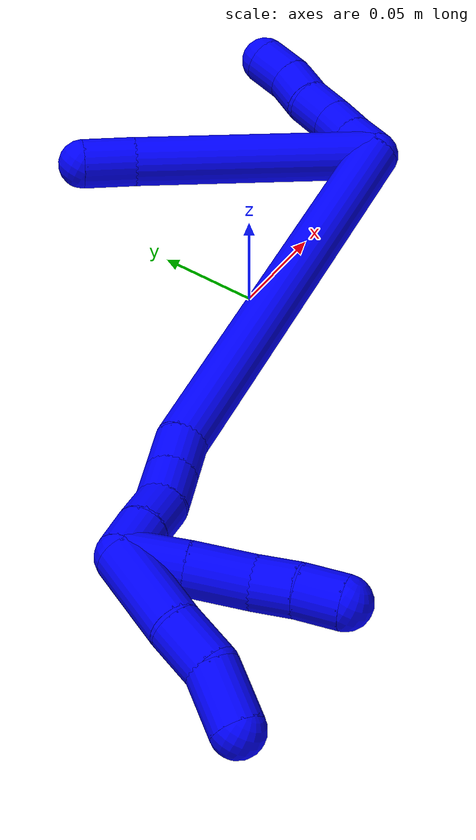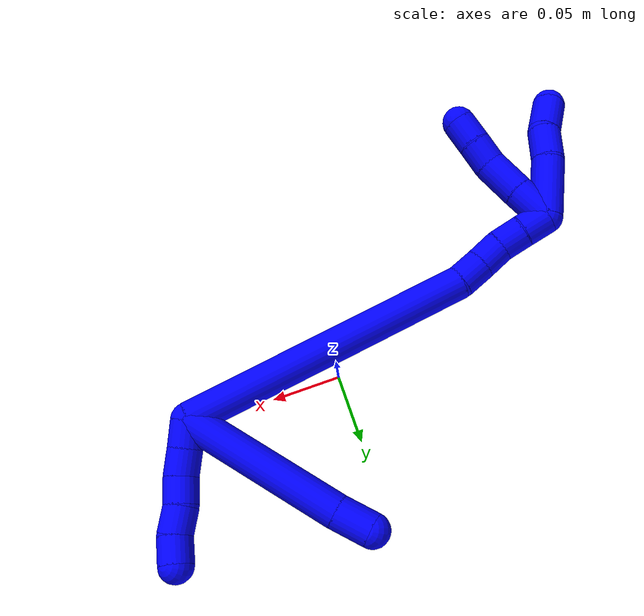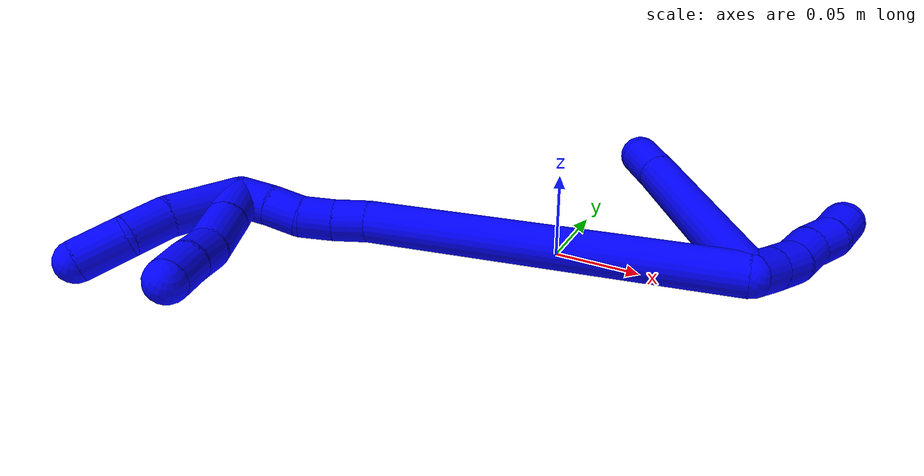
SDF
<sdf version="1.7">
 <world name="default">
  <model name="1">
   <static>0</static>
   <link name="1">
    <collision name="collision-cylinder-e_1_2_8">
     <pose>-0.029239 0.046481 -0.027835 -2.11037 -0.494883 0.838602</pose>
     <geometry><cylinder><radius>0.0125</radius><length>0.123129</length></cylinder></geometry>
     <surface>
      <friction><ode><mu>1.16</mu><mu2>1.16</mu2><slip1>0</slip1><slip2>0</slip2></ode></friction>
      <contact><ode><kp>1e+06</kp><kd>1</kd><max_vel>0</max_vel><min_depth>0.001</min_depth></ode></contact>
     </surface>
    </collision>
    <visual name="visual-cylinder-e_1_2_8">
     <pose>-0.029239 0.046481 -0.027835 -2.11037 -0.494883 0.838602</pose>
     <geometry><cylinder><radius>0.0125</radius><length>0.123129</length></cylinder></geometry>
     <material><ambient>0 0 1 1</ambient></material>
    </visual>
    <collision name="collision-cylinder-e_2_8_6">
     <pose>-0.065745 0.102594 -0.061579 -2.12104 -0.571562 0.966813</pose>
     <geometry><cylinder><radius>0.0125</radius><length>0.026871</length></cylinder></geometry>
     <surface>
      <friction><ode><mu>1.16</mu><mu2>1.16</mu2><slip1>0</slip1><slip2>0</slip2></ode></friction>
      <contact><ode><kp>1e+06</kp><kd>1</kd><max_vel>0</max_vel><min_depth>0.001</min_depth></ode></contact>
     </surface>
    </collision>
    <visual name="visual-cylinder-e_2_8_6">
     <pose>-0.065745 0.102594 -0.061579 -2.12104 -0.571562 0.966813</pose>
     <geometry><cylinder><radius>0.0125</radius><length>0.026871</length></cylinder></geometry>
     <material><ambient>0 0 1 1</ambient></material>
    </visual>
    <collision name="collision-cylinder-e_1_2_9">
     <pose>0.005369 0.008375 -0.001014 -1.69131 0.566782 -0.635014</pose>
     <geometry><cylinder><radius>0.0125</radius><length>0.02</length></cylinder></geometry>
     <surface>
      <friction><ode><mu>1.16</mu><mu2>1.16</mu2><slip1>0</slip1><slip2>0</slip2></ode></friction>
      <contact><ode><kp>1e+06</kp><kd>1</kd><max_vel>0</max_vel><min_depth>0.001</min_depth></ode></contact>
     </surface>
    </collision>
    <visual name="visual-cylinder-e_1_2_9">
     <pose>0.005369 0.008375 -0.001014 -1.69131 0.566782 -0.635014</pose>
     <geometry><cylinder><radius>0.0125</radius><length>0.02</length></cylinder></geometry>
     <material><ambient>0 0 1 1</ambient></material>
    </visual>
    <collision name="collision-cylinder-e_2_9_10">
     <pose>0.015938 0.025281 -0.002456 -1.62093 0.546826 -0.573468</pose>
     <geometry><cylinder><radius>0.0125</radius><length>0.02</length></cylinder></geometry>
     <surface>
      <friction><ode><mu>1.16</mu><mu2>1.16</mu2><slip1>0</slip1><slip2>0</slip2></ode></friction>
      <contact><ode><kp>1e+06</kp><kd>1</kd><max_vel>0</max_vel><min_depth>0.001</min_depth></ode></contact>
     </surface>
    </collision>
    <visual name="visual-cylinder-e_2_9_10">
     <pose>0.015938 0.025281 -0.002456 -1.62093 0.546826 -0.573468</pose>
     <geometry><cylinder><radius>0.0125</radius><length>0.02</length></cylinder></geometry>
     <material><ambient>0 0 1 1</ambient></material>
    </visual>
    <collision name="collision-cylinder-e_3_10_11">
     <pose>0.024085 0.043368 -0.002932 -1.57577 0.299151 -0.300622</pose>
     <geometry><cylinder><radius>0.0125</radius><length>0.02</length></cylinder></geometry>
     <surface>
      <friction><ode><mu>1.16</mu><mu2>1.16</mu2><slip1>0</slip1><slip2>0</slip2></ode></friction>
      <contact><ode><kp>1e+06</kp><kd>1</kd><max_vel>0</max_vel><min_depth>0.001</min_depth></ode></contact>
     </surface>
    </collision>
    <visual name="visual-cylinder-e_3_10_11">
     <pose>0.024085 0.043368 -0.002932 -1.57577 0.299151 -0.300622</pose>
     <geometry><cylinder><radius>0.0125</radius><length>0.02</length></cylinder></geometry>
     <material><ambient>0 0 1 1</ambient></material>
    </visual>
    <collision name="collision-cylinder-e_4_11_12">
     <pose>0.031871 0.061628 -0.002074 -1.46713 0.505108 -0.45709</pose>
     <geometry><cylinder><radius>0.0125</radius><length>0.02</length></cylinder></geometry>
     <surface>
      <friction><ode><mu>1.16</mu><mu2>1.16</mu2><slip1>0</slip1><slip2>0</slip2></ode></friction>
      <contact><ode><kp>1e+06</kp><kd>1</kd><max_vel>0</max_vel><min_depth>0.001</min_depth></ode></contact>
     </surface>
    </collision>
    <visual name="visual-cylinder-e_4_11_12">
     <pose>0.031871 0.061628 -0.002074 -1.46713 0.505108 -0.45709</pose>
     <geometry><cylinder><radius>0.0125</radius><length>0.02</length></cylinder></geometry>
     <material><ambient>0 0 1 1</ambient></material>
    </visual>
    <collision name="collision-cylinder-e_5_12_5">
     <pose>0.039195 0.080018 -0.001283 -1.58261 0.251151 -0.254105</pose>
     <geometry><cylinder><radius>0.0125</radius><length>0.02</length></cylinder></geometry>
     <surface>
      <friction><ode><mu>1.16</mu><mu2>1.16</mu2><slip1>0</slip1><slip2>0</slip2></ode></friction>
      <contact><ode><kp>1e+06</kp><kd>1</kd><max_vel>0</max_vel><min_depth>0.001</min_depth></ode></contact>
     </surface>
    </collision>
    <visual name="visual-cylinder-e_5_12_5">
     <pose>0.039195 0.080018 -0.001283 -1.58261 0.251151 -0.254105</pose>
     <geometry><cylinder><radius>0.0125</radius><length>0.02</length></cylinder></geometry>
     <material><ambient>0 0 1 1</ambient></material>
    </visual>
    <collision name="collision-cylinder-e_1_2_13">
     <pose>-0.092253 -0.017741 -0.055584 2.83265 -1.00684 -2.59052</pose>
     <geometry><cylinder><radius>0.0125</radius><length>0.218311</length></cylinder></geometry>
     <surface>
      <friction><ode><mu>1.16</mu><mu2>1.16</mu2><slip1>0</slip1><slip2>0</slip2></ode></friction>
      <contact><ode><kp>1e+06</kp><kd>1</kd><max_vel>0</max_vel><min_depth>0.001</min_depth></ode></contact>
     </surface>
    </collision>
    <visual name="visual-cylinder-e_1_2_13">
     <pose>-0.092253 -0.017741 -0.055584 2.83265 -1.00684 -2.59052</pose>
     <geometry><cylinder><radius>0.0125</radius><length>0.218311</length></cylinder></geometry>
     <material><ambient>0 0 1 1</ambient></material>
    </visual>
    <collision name="collision-cylinder-e_2_13_14">
     <pose>-0.193154 -0.039522 -0.115519 2.39305 -0.969203 -1.85963</pose>
     <geometry><cylinder><radius>0.0125</radius><length>0.020981</length></cylinder></geometry>
     <surface>
      <friction><ode><mu>1.16</mu><mu2>1.16</mu2><slip1>0</slip1><slip2>0</slip2></ode></friction>
      <contact><ode><kp>1e+06</kp><kd>1</kd><max_vel>0</max_vel><min_depth>0.001</min_depth></ode></contact>
     </surface>
    </collision>
    <visual name="visual-cylinder-e_2_13_14">
     <pose>-0.193154 -0.039522 -0.115519 2.39305 -0.969203 -1.85963</pose>
     <geometry><cylinder><radius>0.0125</radius><length>0.020981</length></cylinder></geometry>
     <material><ambient>0 0 1 1</ambient></material>
    </visual>
    <collision name="collision-cylinder-e_3_14_15">
     <pose>-0.21052 -0.047424 -0.123263 2.29188 -1.03798 -1.80189</pose>
     <geometry><cylinder><radius>0.0125</radius><length>0.020239</length></cylinder></geometry>
     <surface>
      <friction><ode><mu>1.16</mu><mu2>1.16</mu2><slip1>0</slip1><slip2>0</slip2></ode></friction>
      <contact><ode><kp>1e+06</kp><kd>1</kd><max_vel>0</max_vel><min_depth>0.001</min_depth></ode></contact>
     </surface>
    </collision>
    <visual name="visual-cylinder-e_3_14_15">
     <pose>-0.21052 -0.047424 -0.123263 2.29188 -1.03798 -1.80189</pose>
     <geometry><cylinder><radius>0.0125</radius><length>0.020239</length></cylinder></geometry>
     <material><ambient>0 0 1 1</ambient></material>
    </visual>
    <collision name="collision-cylinder-e_4_15_16">
     <pose>-0.228881 -0.052716 -0.129433 2.66563 -1.25753 -2.49767</pose>
     <geometry><cylinder><radius>0.0125</radius><length>0.020275</length></cylinder></geometry>
     <surface>
      <friction><ode><mu>1.16</mu><mu2>1.16</mu2><slip1>0</slip1><slip2>0</slip2></ode></friction>
      <contact><ode><kp>1e+06</kp><kd>1</kd><max_vel>0</max_vel><min_depth>0.001</min_depth></ode></contact>
     </surface>
    </collision>
    <visual name="visual-cylinder-e_4_15_16">
     <pose>-0.228881 -0.052716 -0.129433 2.66563 -1.25753 -2.49767</pose>
     <geometry><cylinder><radius>0.0125</radius><length>0.020275</length></cylinder></geometry>
     <material><ambient>0 0 1 1</ambient></material>
    </visual>
    <collision name="collision-cylinder-e_5_16_1">
     <pose>-0.247849 -0.055816 -0.135705 2.69619 -1.17714 -2.48742</pose>
     <geometry><cylinder><radius>0.0125</radius><length>0.020194</length></cylinder></geometry>
     <surface>
      <friction><ode><mu>1.16</mu><mu2>1.16</mu2><slip1>0</slip1><slip2>0</slip2></ode></friction>
      <contact><ode><kp>1e+06</kp><kd>1</kd><max_vel>0</max_vel><min_depth>0.001</min_depth></ode></contact>
     </surface>
    </collision>
    <visual name="visual-cylinder-e_5_16_1">
     <pose>-0.247849 -0.055816 -0.135705 2.69619 -1.17714 -2.48742</pose>
     <geometry><cylinder><radius>0.0125</radius><length>0.020194</length></cylinder></geometry>
     <material><ambient>0 0 1 1</ambient></material>
    </visual>
    <collision name="collision-cylinder-e_1_1_17">
     <pose>-0.267439 -0.077797 -0.139742 1.59745 -0.467791 -0.479953</pose>
     <geometry><cylinder><radius>0.0125</radius><length>0.045531</length></cylinder></geometry>
     <surface>
      <friction><ode><mu>1.16</mu><mu2>1.16</mu2><slip1>0</slip1><slip2>0</slip2></ode></friction>
      <contact><ode><kp>1e+06</kp><kd>1</kd><max_vel>0</max_vel><min_depth>0.001</min_depth></ode></contact>
     </surface>
    </collision>
    <visual name="visual-cylinder-e_1_1_17">
     <pose>-0.267439 -0.077797 -0.139742 1.59745 -0.467791 -0.479953</pose>
     <geometry><cylinder><radius>0.0125</radius><length>0.045531</length></cylinder></geometry>
     <material><ambient>0 0 1 1</ambient></material>
    </visual>
    <collision name="collision-cylinder-e_2_17_18">
     <pose>-0.281228 -0.110196 -0.141166 1.64372 -0.282944 -0.304049</pose>
     <geometry><cylinder><radius>0.0125</radius><length>0.02524</length></cylinder></geometry>
     <surface>
      <friction><ode><mu>1.16</mu><mu2>1.16</mu2><slip1>0</slip1><slip2>0</slip2></ode></friction>
      <contact><ode><kp>1e+06</kp><kd>1</kd><max_vel>0</max_vel><min_depth>0.001</min_depth></ode></contact>
     </surface>
    </collision>
    <visual name="visual-cylinder-e_2_17_18">
     <pose>-0.281228 -0.110196 -0.141166 1.64372 -0.282944 -0.304049</pose>
     <geometry><cylinder><radius>0.0125</radius><length>0.02524</length></cylinder></geometry>
     <material><ambient>0 0 1 1</ambient></material>
    </visual>
    <collision name="collision-cylinder-e_3_18_4">
     <pose>-0.290371 -0.134785 -0.147115 1.95575 -0.394737 -0.577009</pose>
     <geometry><cylinder><radius>0.0125</radius><length>0.029229</length></cylinder></geometry>
     <surface>
      <friction><ode><mu>1.16</mu><mu2>1.16</mu2><slip1>0</slip1><slip2>0</slip2></ode></friction>
      <contact><ode><kp>1e+06</kp><kd>1</kd><max_vel>0</max_vel><min_depth>0.001</min_depth></ode></contact>
     </surface>
    </collision>
    <visual name="visual-cylinder-e_3_18_4">
     <pose>-0.290371 -0.134785 -0.147115 1.95575 -0.394737 -0.577009</pose>
     <geometry><cylinder><radius>0.0125</radius><length>0.029229</length></cylinder></geometry>
     <material><ambient>0 0 1 1</ambient></material>
    </visual>
    <collision name="collision-cylinder-e_1_1_19">
     <pose>-0.253226 -0.070156 -0.134282 1.20057 0.282675 0.194194</pose>
     <geometry><cylinder><radius>0.0125</radius><length>0.028309</length></cylinder></geometry>
     <surface>
      <friction><ode><mu>1.16</mu><mu2>1.16</mu2><slip1>0</slip1><slip2>0</slip2></ode></friction>
      <contact><ode><kp>1e+06</kp><kd>1</kd><max_vel>0</max_vel><min_depth>0.001</min_depth></ode></contact>
     </surface>
    </collision>
    <visual name="visual-cylinder-e_1_1_19">
     <pose>-0.253226 -0.070156 -0.134282 1.20057 0.282675 0.194194</pose>
     <geometry><cylinder><radius>0.0125</radius><length>0.028309</length></cylinder></geometry>
     <material><ambient>0 0 1 1</ambient></material>
    </visual>
    <collision name="collision-cylinder-e_2_19_20">
     <pose>-0.245422 -0.096745 -0.124454 1.23165 0.255571 0.18134</pose>
     <geometry><cylinder><radius>0.0125</radius><length>0.030506</length></cylinder></geometry>
     <surface>
      <friction><ode><mu>1.16</mu><mu2>1.16</mu2><slip1>0</slip1><slip2>0</slip2></ode></friction>
      <contact><ode><kp>1e+06</kp><kd>1</kd><max_vel>0</max_vel><min_depth>0.001</min_depth></ode></contact>
     </surface>
    </collision>
    <visual name="visual-cylinder-e_2_19_20">
     <pose>-0.245422 -0.096745 -0.124454 1.23165 0.255571 0.18134</pose>
     <geometry><cylinder><radius>0.0125</radius><length>0.030506</length></cylinder></geometry>
     <material><ambient>0 0 1 1</ambient></material>
    </visual>
    <collision name="collision-cylinder-e_3_20_21">
     <pose>-0.241019 -0.119721 -0.115151 1.11926 0.054256 0.033993</pose>
     <geometry><cylinder><radius>0.0125</radius><length>0.020167</length></cylinder></geometry>
     <surface>
      <friction><ode><mu>1.16</mu><mu2>1.16</mu2><slip1>0</slip1><slip2>0</slip2></ode></friction>
      <contact><ode><kp>1e+06</kp><kd>1</kd><max_vel>0</max_vel><min_depth>0.001</min_depth></ode></contact>
     </surface>
    </collision>
    <visual name="visual-cylinder-e_3_20_21">
     <pose>-0.241019 -0.119721 -0.115151 1.11926 0.054256 0.033993</pose>
     <geometry><cylinder><radius>0.0125</radius><length>0.020167</length></cylinder></geometry>
     <material><ambient>0 0 1 1</ambient></material>
    </visual>
    <collision name="collision-cylinder-e_4_21_3">
     <pose>-0.239573 -0.13859 -0.107096 1.2135 0.085707 0.059507</pose>
     <geometry><cylinder><radius>0.0125</radius><length>0.021019</length></cylinder></geometry>
     <surface>
      <friction><ode><mu>1.16</mu><mu2>1.16</mu2><slip1>0</slip1><slip2>0</slip2></ode></friction>
      <contact><ode><kp>1e+06</kp><kd>1</kd><max_vel>0</max_vel><min_depth>0.001</min_depth></ode></contact>
     </surface>
    </collision>
    <visual name="visual-cylinder-e_4_21_3">
     <pose>-0.239573 -0.13859 -0.107096 1.2135 0.085707 0.059507</pose>
     <geometry><cylinder><radius>0.0125</radius><length>0.021019</length></cylinder></geometry>
     <material><ambient>0 0 1 1</ambient></material>
    </visual>
    <collision name="collision-sphere-3">
     <pose>-0.238673 -0.148399 -0.103434 0 -0 0</pose>
     <geometry><sphere><radius>0.0125</radius></sphere></geometry>
     <surface>
      <friction><ode><mu>1.16</mu><mu2>1.16</mu2><slip1>0</slip1><slip2>0</slip2></ode></friction>
      <contact><ode><kp>1e+06</kp><kd>1</kd><max_vel>0</max_vel><min_depth>0.001</min_depth></ode></contact>
     </surface>
    </collision>
    <visual name="visual-sphere-3">
     <pose>-0.238673 -0.148399 -0.103434 0 -0 0</pose>
     <geometry><sphere><radius>0.0125</radius></sphere></geometry>
     <material><ambient>0 0 1 1</ambient></material>
    </visual>
    <collision name="collision-sphere-21">
     <pose>-0.240472 -0.128781 -0.110758 0 -0 0</pose>
     <geometry><sphere><radius>0.0125</radius></sphere></geometry>
     <surface>
      <friction><ode><mu>1.16</mu><mu2>1.16</mu2><slip1>0</slip1><slip2>0</slip2></ode></friction>
      <contact><ode><kp>1e+06</kp><kd>1</kd><max_vel>0</max_vel><min_depth>0.001</min_depth></ode></contact>
     </surface>
    </collision>
    <visual name="visual-sphere-21">
     <pose>-0.240472 -0.128781 -0.110758 0 -0 0</pose>
     <geometry><sphere><radius>0.0125</radius></sphere></geometry>
     <material><ambient>0 0 1 1</ambient></material>
    </visual>
    <collision name="collision-sphere-20">
     <pose>-0.241566 -0.110662 -0.119545 0 -0 0</pose>
     <geometry><sphere><radius>0.0125</radius></sphere></geometry>
     <surface>
      <friction><ode><mu>1.16</mu><mu2>1.16</mu2><slip1>0</slip1><slip2>0</slip2></ode></friction>
      <contact><ode><kp>1e+06</kp><kd>1</kd><max_vel>0</max_vel><min_depth>0.001</min_depth></ode></contact>
     </surface>
    </collision>
    <visual name="visual-sphere-20">
     <pose>-0.241566 -0.110662 -0.119545 0 -0 0</pose>
     <geometry><sphere><radius>0.0125</radius></sphere></geometry>
     <material><ambient>0 0 1 1</ambient></material>
    </visual>
    <collision name="collision-sphere-19">
     <pose>-0.249278 -0.082828 -0.129364 0 -0 0</pose>
     <geometry><sphere><radius>0.0125</radius></sphere></geometry>
     <surface>
      <friction><ode><mu>1.16</mu><mu2>1.16</mu2><slip1>0</slip1><slip2>0</slip2></ode></friction>
      <contact><ode><kp>1e+06</kp><kd>1</kd><max_vel>0</max_vel><min_depth>0.001</min_depth></ode></contact>
     </surface>
    </collision>
    <visual name="visual-sphere-19">
     <pose>-0.249278 -0.082828 -0.129364 0 -0 0</pose>
     <geometry><sphere><radius>0.0125</radius></sphere></geometry>
     <material><ambient>0 0 1 1</ambient></material>
    </visual>
    <collision name="collision-sphere-11">
     <pose>0.027032 0.052924 -0.00298 0 -0 0</pose>
     <geometry><sphere><radius>0.0125</radius></sphere></geometry>
     <surface>
      <friction><ode><mu>1.16</mu><mu2>1.16</mu2><slip1>0</slip1><slip2>0</slip2></ode></friction>
      <contact><ode><kp>1e+06</kp><kd>1</kd><max_vel>0</max_vel><min_depth>0.001</min_depth></ode></contact>
     </surface>
    </collision>
    <visual name="visual-sphere-11">
     <pose>0.027032 0.052924 -0.00298 0 -0 0</pose>
     <geometry><sphere><radius>0.0125</radius></sphere></geometry>
     <material><ambient>0 0 1 1</ambient></material>
    </visual>
    <collision name="collision-sphere-10">
     <pose>0.021138 0.033812 -0.002885 0 -0 0</pose>
     <geometry><sphere><radius>0.0125</radius></sphere></geometry>
     <surface>
      <friction><ode><mu>1.16</mu><mu2>1.16</mu2><slip1>0</slip1><slip2>0</slip2></ode></friction>
      <contact><ode><kp>1e+06</kp><kd>1</kd><max_vel>0</max_vel><min_depth>0.001</min_depth></ode></contact>
     </surface>
    </collision>
    <visual name="visual-sphere-10">
     <pose>0.021138 0.033812 -0.002885 0 -0 0</pose>
     <geometry><sphere><radius>0.0125</radius></sphere></geometry>
     <material><ambient>0 0 1 1</ambient></material>
    </visual>
    <collision name="collision-sphere-6">
     <pose>-0.073013 0.112226 -0.067488 0 -0 0</pose>
     <geometry><sphere><radius>0.0125</radius></sphere></geometry>
     <surface>
      <friction><ode><mu>1.16</mu><mu2>1.16</mu2><slip1>0</slip1><slip2>0</slip2></ode></friction>
      <contact><ode><kp>1e+06</kp><kd>1</kd><max_vel>0</max_vel><min_depth>0.001</min_depth></ode></contact>
     </surface>
    </collision>
    <visual name="visual-sphere-6">
     <pose>-0.073013 0.112226 -0.067488 0 -0 0</pose>
     <geometry><sphere><radius>0.0125</radius></sphere></geometry>
     <material><ambient>0 0 1 1</ambient></material>
    </visual>
    <collision name="collision-sphere-9">
     <pose>0.010738 0.01675 -0.002028 0 -0 0</pose>
     <geometry><sphere><radius>0.0125</radius></sphere></geometry>
     <surface>
      <friction><ode><mu>1.16</mu><mu2>1.16</mu2><slip1>0</slip1><slip2>0</slip2></ode></friction>
      <contact><ode><kp>1e+06</kp><kd>1</kd><max_vel>0</max_vel><min_depth>0.001</min_depth></ode></contact>
     </surface>
    </collision>
    <visual name="visual-sphere-9">
     <pose>0.010738 0.01675 -0.002028 0 -0 0</pose>
     <geometry><sphere><radius>0.0125</radius></sphere></geometry>
     <material><ambient>0 0 1 1</ambient></material>
    </visual>
    <collision name="collision-sphere-2">
     <geometry><sphere><radius>0.0125</radius></sphere></geometry>
     <surface>
      <friction><ode><mu>1.16</mu><mu2>1.16</mu2><slip1>0</slip1><slip2>0</slip2></ode></friction>
      <contact><ode><kp>1e+06</kp><kd>1</kd><max_vel>0</max_vel><min_depth>0.001</min_depth></ode></contact>
     </surface>
    </collision>
    <visual name="visual-sphere-2">
     <geometry><sphere><radius>0.0125</radius></sphere></geometry>
     <material><ambient>0 0 1 1</ambient></material>
    </visual>
    <collision name="collision-sphere-8">
     <pose>-0.058477 0.092962 -0.05567 0 -0 0</pose>
     <geometry><sphere><radius>0.0125</radius></sphere></geometry>
     <surface>
      <friction><ode><mu>1.16</mu><mu2>1.16</mu2><slip1>0</slip1><slip2>0</slip2></ode></friction>
      <contact><ode><kp>1e+06</kp><kd>1</kd><max_vel>0</max_vel><min_depth>0.001</min_depth></ode></contact>
     </surface>
    </collision>
    <visual name="visual-sphere-8">
     <pose>-0.058477 0.092962 -0.05567 0 -0 0</pose>
     <geometry><sphere><radius>0.0125</radius></sphere></geometry>
     <material><ambient>0 0 1 1</ambient></material>
    </visual>
    <collision name="collision-sphere-12">
     <pose>0.03671 0.070332 -0.001169 0 -0 0</pose>
     <geometry><sphere><radius>0.0125</radius></sphere></geometry>
     <surface>
      <friction><ode><mu>1.16</mu><mu2>1.16</mu2><slip1>0</slip1><slip2>0</slip2></ode></friction>
      <contact><ode><kp>1e+06</kp><kd>1</kd><max_vel>0</max_vel><min_depth>0.001</min_depth></ode></contact>
     </surface>
    </collision>
    <visual name="visual-sphere-12">
     <pose>0.03671 0.070332 -0.001169 0 -0 0</pose>
     <geometry><sphere><radius>0.0125</radius></sphere></geometry>
     <material><ambient>0 0 1 1</ambient></material>
    </visual>
    <collision name="collision-sphere-5">
     <pose>0.041681 0.089704 -0.001397 0 -0 0</pose>
     <geometry><sphere><radius>0.0125</radius></sphere></geometry>
     <surface>
      <friction><ode><mu>1.16</mu><mu2>1.16</mu2><slip1>0</slip1><slip2>0</slip2></ode></friction>
      <contact><ode><kp>1e+06</kp><kd>1</kd><max_vel>0</max_vel><min_depth>0.001</min_depth></ode></contact>
     </surface>
    </collision>
    <visual name="visual-sphere-5">
     <pose>0.041681 0.089704 -0.001397 0 -0 0</pose>
     <geometry><sphere><radius>0.0125</radius></sphere></geometry>
     <material><ambient>0 0 1 1</ambient></material>
    </visual>
    <collision name="collision-sphere-13">
     <pose>-0.184506 -0.035481 -0.111169 0 -0 0</pose>
     <geometry><sphere><radius>0.0125</radius></sphere></geometry>
     <surface>
      <friction><ode><mu>1.16</mu><mu2>1.16</mu2><slip1>0</slip1><slip2>0</slip2></ode></friction>
      <contact><ode><kp>1e+06</kp><kd>1</kd><max_vel>0</max_vel><min_depth>0.001</min_depth></ode></contact>
     </surface>
    </collision>
    <visual name="visual-sphere-13">
     <pose>-0.184506 -0.035481 -0.111169 0 -0 0</pose>
     <geometry><sphere><radius>0.0125</radius></sphere></geometry>
     <material><ambient>0 0 1 1</ambient></material>
    </visual>
    <collision name="collision-sphere-14">
     <pose>-0.201803 -0.043563 -0.119869 0 -0 0</pose>
     <geometry><sphere><radius>0.0125</radius></sphere></geometry>
     <surface>
      <friction><ode><mu>1.16</mu><mu2>1.16</mu2><slip1>0</slip1><slip2>0</slip2></ode></friction>
      <contact><ode><kp>1e+06</kp><kd>1</kd><max_vel>0</max_vel><min_depth>0.001</min_depth></ode></contact>
     </surface>
    </collision>
    <visual name="visual-sphere-14">
     <pose>-0.201803 -0.043563 -0.119869 0 -0 0</pose>
     <geometry><sphere><radius>0.0125</radius></sphere></geometry>
     <material><ambient>0 0 1 1</ambient></material>
    </visual>
    <collision name="collision-sphere-15">
     <pose>-0.219237 -0.051285 -0.126656 0 -0 0</pose>
     <geometry><sphere><radius>0.0125</radius></sphere></geometry>
     <surface>
      <friction><ode><mu>1.16</mu><mu2>1.16</mu2><slip1>0</slip1><slip2>0</slip2></ode></friction>
      <contact><ode><kp>1e+06</kp><kd>1</kd><max_vel>0</max_vel><min_depth>0.001</min_depth></ode></contact>
     </surface>
    </collision>
    <visual name="visual-sphere-15">
     <pose>-0.219237 -0.051285 -0.126656 0 -0 0</pose>
     <geometry><sphere><radius>0.0125</radius></sphere></geometry>
     <material><ambient>0 0 1 1</ambient></material>
    </visual>
    <collision name="collision-sphere-16">
     <pose>-0.238525 -0.054147 -0.13221 0 -0 0</pose>
     <geometry><sphere><radius>0.0125</radius></sphere></geometry>
     <surface>
      <friction><ode><mu>1.16</mu><mu2>1.16</mu2><slip1>0</slip1><slip2>0</slip2></ode></friction>
      <contact><ode><kp>1e+06</kp><kd>1</kd><max_vel>0</max_vel><min_depth>0.001</min_depth></ode></contact>
     </surface>
    </collision>
    <visual name="visual-sphere-16">
     <pose>-0.238525 -0.054147 -0.13221 0 -0 0</pose>
     <geometry><sphere><radius>0.0125</radius></sphere></geometry>
     <material><ambient>0 0 1 1</ambient></material>
    </visual>
    <collision name="collision-sphere-1">
     <pose>-0.257174 -0.057484 -0.1392 0 -0 0</pose>
     <geometry><sphere><radius>0.0125</radius></sphere></geometry>
     <surface>
      <friction><ode><mu>1.16</mu><mu2>1.16</mu2><slip1>0</slip1><slip2>0</slip2></ode></friction>
      <contact><ode><kp>1e+06</kp><kd>1</kd><max_vel>0</max_vel><min_depth>0.001</min_depth></ode></contact>
     </surface>
    </collision>
    <visual name="visual-sphere-1">
     <pose>-0.257174 -0.057484 -0.1392 0 -0 0</pose>
     <geometry><sphere><radius>0.0125</radius></sphere></geometry>
     <material><ambient>0 0 1 1</ambient></material>
    </visual>
    <collision name="collision-sphere-18">
     <pose>-0.284751 -0.122282 -0.142049 0 -0 0</pose>
     <geometry><sphere><radius>0.0125</radius></sphere></geometry>
     <surface>
      <friction><ode><mu>1.16</mu><mu2>1.16</mu2><slip1>0</slip1><slip2>0</slip2></ode></friction>
      <contact><ode><kp>1e+06</kp><kd>1</kd><max_vel>0</max_vel><min_depth>0.001</min_depth></ode></contact>
     </surface>
    </collision>
    <visual name="visual-sphere-18">
     <pose>-0.284751 -0.122282 -0.142049 0 -0 0</pose>
     <geometry><sphere><radius>0.0125</radius></sphere></geometry>
     <material><ambient>0 0 1 1</ambient></material>
    </visual>
    <collision name="collision-sphere-17">
     <pose>-0.277705 -0.09811 -0.140283 0 -0 0</pose>
     <geometry><sphere><radius>0.0125</radius></sphere></geometry>
     <surface>
      <friction><ode><mu>1.16</mu><mu2>1.16</mu2><slip1>0</slip1><slip2>0</slip2></ode></friction>
      <contact><ode><kp>1e+06</kp><kd>1</kd><max_vel>0</max_vel><min_depth>0.001</min_depth></ode></contact>
     </surface>
    </collision>
    <visual name="visual-sphere-17">
     <pose>-0.277705 -0.09811 -0.140283 0 -0 0</pose>
     <geometry><sphere><radius>0.0125</radius></sphere></geometry>
     <material><ambient>0 0 1 1</ambient></material>
    </visual>
    <collision name="collision-sphere-4">
     <pose>-0.295992 -0.147288 -0.152181 0 -0 0</pose>
     <geometry><sphere><radius>0.0125</radius></sphere></geometry>
     <surface>
      <friction><ode><mu>1.16</mu><mu2>1.16</mu2><slip1>0</slip1><slip2>0</slip2></ode></friction>
      <contact><ode><kp>1e+06</kp><kd>1</kd><max_vel>0</max_vel><min_depth>0.001</min_depth></ode></contact>
     </surface>
    </collision>
    <visual name="visual-sphere-4">
     <pose>-0.295992 -0.147288 -0.152181 0 -0 0</pose>
     <geometry><sphere><radius>0.0125</radius></sphere></geometry>
     <material><ambient>0 0 1 1</ambient></material>
    </visual>
    <inertial>
     <pose>-0.1246 -0.02071 -0.072122 0 -0 0</pose>
     <mass>0.75</mass>
     <inertia>
      <ixx>-0.000449</ixx>
      <ixy>0</ixy>
      <ixz>0</ixz>
      <iyy>0.000683</iyy>
      <iyz>0</iyz>
      <izz>0.000847</izz>
     </inertia>
    </inertial>
   </link>
   <pose>0.109374 -0.003135 0.01734 0.25922 0.541466 0.121012</pose>
  </model>
 </world>
</sdf>
